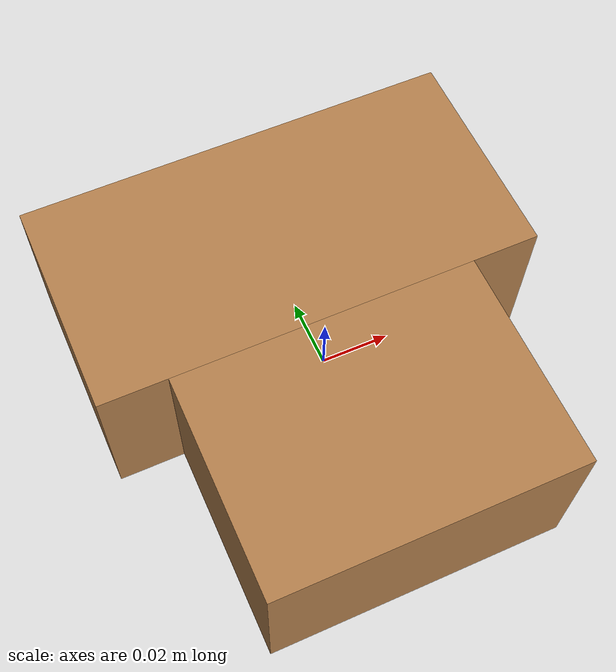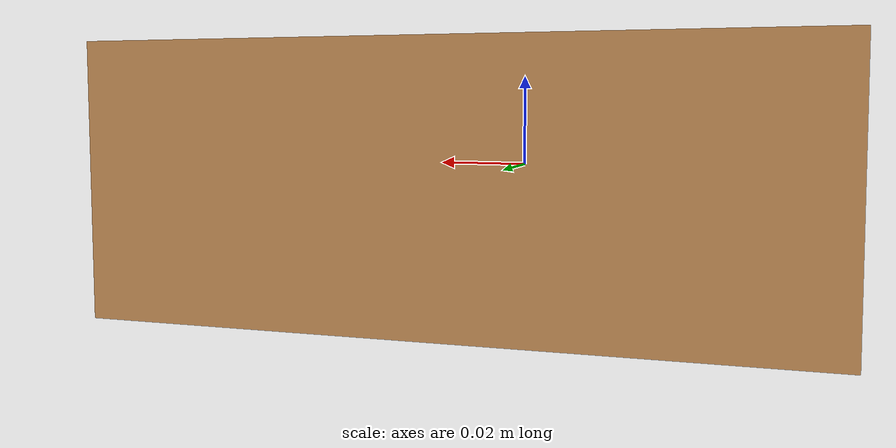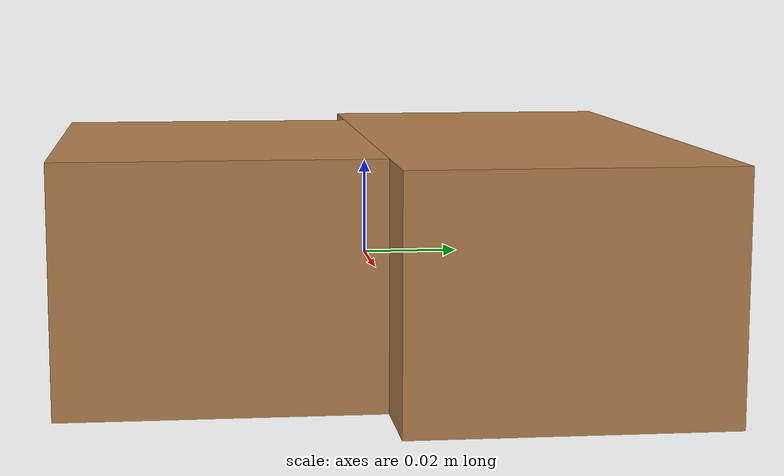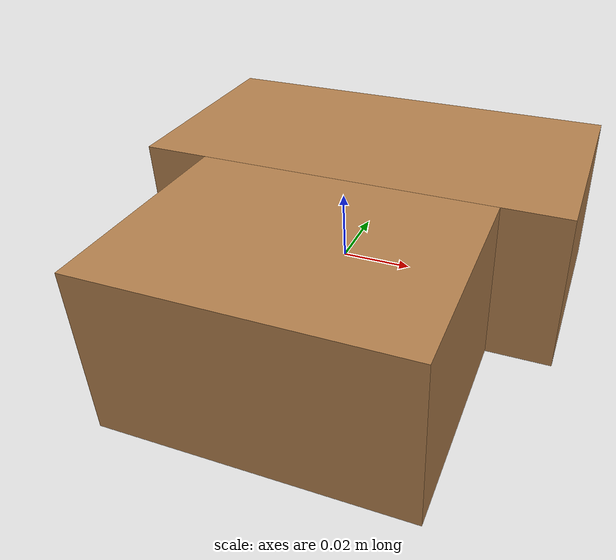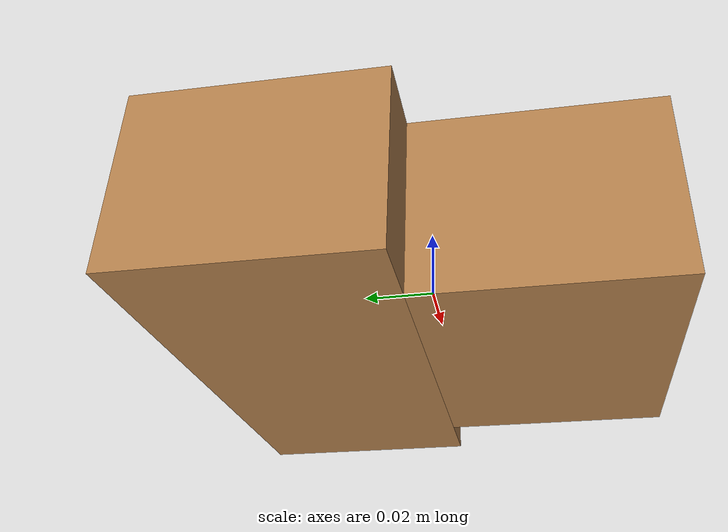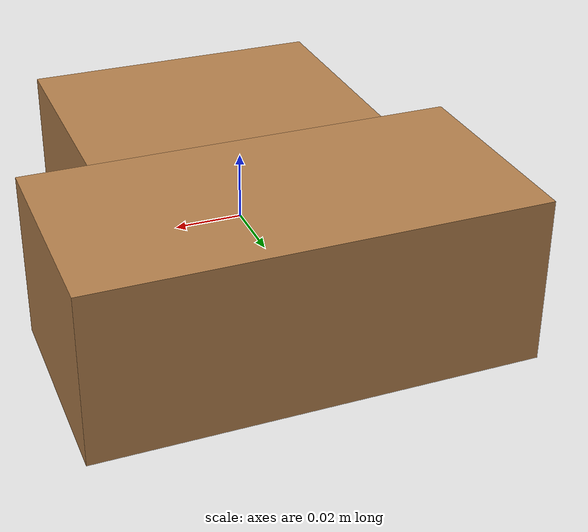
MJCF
<mujoco model="box_cut">
  <asset>
    <texture file="../../textures/red-wood.png" name="tex-box_cut" type="2d"/>
    <material name="redwood" reflectance="0.7" texrepeat="5 5" texture="tex-box_cut" texuniform="true"/>
  </asset>
  <worldbody>
    <body>
      <body name="object">

        <geom pos="0 -0.0325 0" type="box" size="0.045 0.0325 0.025" solimp="1.0 1.0 0.001" solref="0.02 1.0" density="100" friction="0.5 0.005 0.0001" material="redwood" group="0"/>
        <geom pos="0 0.0325 0" type="box" size="0.065 0.0325 0.025" solimp="1.0 1.0 0.001" solref="0.02 1.0" density="100" friction="0.5 0.005 0.0001" material="redwood" group="0"/>

        <geom pos="0 -0.0325 0" type="box" size="0.045 0.0325 0.025" conaffinity="0" contype="0"  rgba="0.5 0 0 0.3" group="1"/>
        <geom pos="0 0.0325 0" type="box" size="0.065 0.0325 0.025" conaffinity="0" contype="0"  rgba="0.5 0 0 0.3" group="1"/>

      </body>
    </body>
  </worldbody>
</mujoco>
